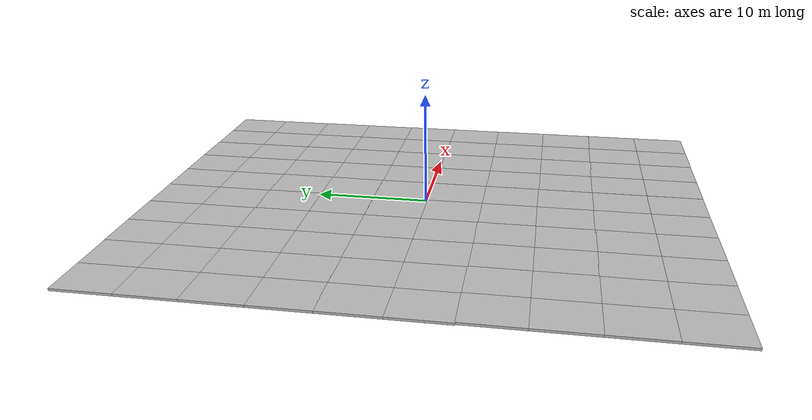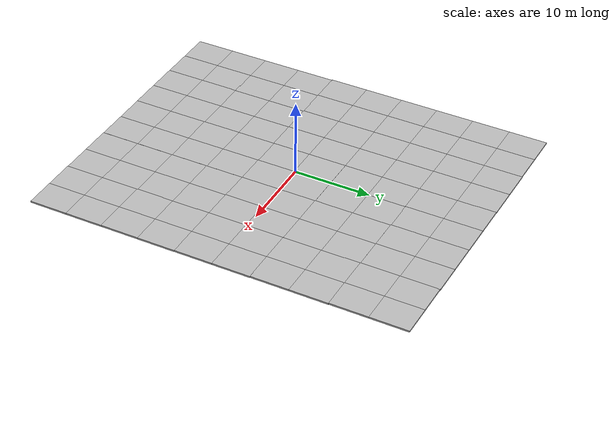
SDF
<sdf version="1.6">
 <world name="default">
  <light name="sun" type="directional">
   <pose>0 0 10 0 -0 0</pose>
   <diffuse>0.8 0.8 0.8 1</diffuse>
   <specular>0.2 0.2 0.2 1</specular>
   <attenuation>
    <range>1000</range>
    <constant>0.9</constant>
    <linear>0.01</linear>
    <quadratic>0.001</quadratic>
   </attenuation>
   <direction>-0.5 0.1 -0.9</direction>
  </light>
  <physics name="default_physics" default="0" type="ode">
   <max_step_size>0.001</max_step_size>
   <real_time_factor>1</real_time_factor>
   <real_time_update_rate>1000</real_time_update_rate>
  </physics>
  <scene><ambient>0.4 0.4 0.4 1</ambient><background>0.7 0.7 0.7 1</background><shadows>1</shadows></scene>
  <gravity>0 0 -9.8</gravity>
  <magnetic_field>6e-06 2.3e-05 -4.2e-05</magnetic_field>
  <atmosphere type="adiabatic"/>
  <spherical_coordinates>
   <surface_model>EARTH_WGS84</surface_model>
   <latitude_deg>0</latitude_deg>
   <longitude_deg>0</longitude_deg>
   <elevation>0</elevation>
   <heading_deg>0</heading_deg>
  </spherical_coordinates>
  <model name="mud_box_many">
   <link name="link">
    <visual name="visual_1">
     <pose>-2 2.5 0 0 -0 0</pose>
     <cast_shadows>0</cast_shadows>
     <geometry><box><size>4 5 0.2</size></box></geometry>
     <material>
      <script>
       <uri>model://mud_box/materials/scripts</uri>
       <uri>model://mud_box/materials/textures</uri>
       <name>vrc/mud</name>
      </script>
      <shader type="pixel"/>
     </material>
    </visual>
    <visual name="visual_2">
     <pose>2 2.5 0 0 -0 0</pose>
     <cast_shadows>0</cast_shadows>
     <geometry><box><size>4 5 0.2</size></box></geometry>
     <material>
      <script>
       <uri>model://mud_box/materials/scripts</uri>
       <uri>model://mud_box/materials/textures</uri>
       <name>vrc/mud</name>
      </script>
      <shader type="pixel"/>
     </material>
    </visual>
    <visual name="visual_3">
     <pose>2 -2.5 0 0 -0 0</pose>
     <cast_shadows>0</cast_shadows>
     <geometry><box><size>4 5 0.2</size></box></geometry>
     <material>
      <script>
       <uri>model://mud_box/materials/scripts</uri>
       <uri>model://mud_box/materials/textures</uri>
       <name>vrc/mud</name>
      </script>
      <shader type="pixel"/>
     </material>
    </visual>
    <visual name="visual_4">
     <pose>-2 -2.5 0 0 -0 0</pose>
     <cast_shadows>0</cast_shadows>
     <geometry><box><size>4 5 0.2</size></box></geometry>
     <material>
      <script>
       <uri>model://mud_box/materials/scripts</uri>
       <uri>model://mud_box/materials/textures</uri>
       <name>vrc/mud</name>
      </script>
      <shader type="pixel"/>
     </material>
    </visual>
    <collision name="collision">
     <geometry><box><size>8 10 0.2</size></box></geometry>
     <surface>
      <friction>
       <ode><mu>1</mu><mu2>1</mu2><fdir1>0 0 0</fdir1><slip1>0</slip1><slip2>0</slip2></ode>
       <torsional>
        <coefficient>1</coefficient>
        <patch_radius>0</patch_radius>
        <surface_radius>0</surface_radius>
        <use_patch_radius>1</use_patch_radius>
        <ode><slip>0</slip></ode>
       </torsional>
      </friction>
      <bounce><restitution_coefficient>0</restitution_coefficient><threshold>1e+06</threshold></bounce>
      <contact>
       <collide_without_contact>0</collide_without_contact>
       <collide_without_contact_bitmask>1</collide_without_contact_bitmask>
       <collide_bitmask>1</collide_bitmask>
       <ode>
        <soft_cfm>0</soft_cfm>
        <soft_erp>0.2</soft_erp>
        <kp>1e+13</kp>
        <kd>1</kd>
        <max_vel>0.01</max_vel>
        <min_depth>0</min_depth>
       </ode>
       <bullet>
        <split_impulse>1</split_impulse>
        <split_impulse_penetration_threshold>-0.01</split_impulse_penetration_threshold>
        <soft_cfm>0</soft_cfm>
        <soft_erp>0.2</soft_erp>
        <kp>1e+13</kp>
        <kd>1</kd>
       </bullet>
      </contact>
     </surface>
    </collision>
   </link>
   <model name="mud_box">
    <static>1</static>
    <link name="link">
     <collision name="collision"><geometry><box><size>8 10 0.2</size></box></geometry></collision>
     <visual name="visual_1">
      <pose>-2 2.5 0 0 -0 0</pose>
      <cast_shadows>0</cast_shadows>
      <geometry><box><size>4 5 0.2</size></box></geometry>
      <material>
       <script>
        <uri>model://mud_box/materials/scripts</uri>
        <uri>model://mud_box/materials/textures</uri>
        <name>vrc/mud</name>
       </script>
      </material>
     </visual>
     <visual name="visual_2">
      <pose>2 2.5 0 0 -0 0</pose>
      <cast_shadows>0</cast_shadows>
      <geometry><box><size>4 5 0.2</size></box></geometry>
      <material>
       <script>
        <uri>model://mud_box/materials/scripts</uri>
        <uri>model://mud_box/materials/textures</uri>
        <name>vrc/mud</name>
       </script>
      </material>
     </visual>
     <visual name="visual_3">
      <pose>2 -2.5 0 0 -0 0</pose>
      <cast_shadows>0</cast_shadows>
      <geometry><box><size>4 5 0.2</size></box></geometry>
      <material>
       <script>
        <uri>model://mud_box/materials/scripts</uri>
        <uri>model://mud_box/materials/textures</uri>
        <name>vrc/mud</name>
       </script>
      </material>
     </visual>
     <visual name="visual_4">
      <pose>-2 -2.5 0 0 -0 0</pose>
      <cast_shadows>0</cast_shadows>
      <geometry><box><size>4 5 0.2</size></box></geometry>
      <material>
       <script>
        <uri>model://mud_box/materials/scripts</uri>
        <uri>model://mud_box/materials/textures</uri>
        <name>vrc/mud</name>
       </script>
      </material>
     </visual>
    </link>
    <pose>-7.99993 0.000204 0 0 -0 0</pose>
   </model>
   <model name="mud_box_clone">
    <static>1</static>
    <link name="link">
     <collision name="collision"><geometry><box><size>8 10 0.2</size></box></geometry></collision>
     <visual name="visual_1">
      <pose>-2 2.5 0 0 -0 0</pose>
      <cast_shadows>0</cast_shadows>
      <geometry><box><size>4 5 0.2</size></box></geometry>
      <material>
       <script>
        <uri>model://mud_box/materials/scripts</uri>
        <uri>model://mud_box/materials/textures</uri>
        <name>vrc/mud</name>
       </script>
      </material>
     </visual>
     <visual name="visual_2">
      <pose>2 2.5 0 0 -0 0</pose>
      <cast_shadows>0</cast_shadows>
      <geometry><box><size>4 5 0.2</size></box></geometry>
      <material>
       <script>
        <uri>model://mud_box/materials/scripts</uri>
        <uri>model://mud_box/materials/textures</uri>
        <name>vrc/mud</name>
       </script>
      </material>
     </visual>
     <visual name="visual_3">
      <pose>2 -2.5 0 0 -0 0</pose>
      <cast_shadows>0</cast_shadows>
      <geometry><box><size>4 5 0.2</size></box></geometry>
      <material>
       <script>
        <uri>model://mud_box/materials/scripts</uri>
        <uri>model://mud_box/materials/textures</uri>
        <name>vrc/mud</name>
       </script>
      </material>
     </visual>
     <visual name="visual_4">
      <pose>-2 -2.5 0 0 -0 0</pose>
      <cast_shadows>0</cast_shadows>
      <geometry><box><size>4 5 0.2</size></box></geometry>
      <material>
       <script>
        <uri>model://mud_box/materials/scripts</uri>
        <uri>model://mud_box/materials/textures</uri>
        <name>vrc/mud</name>
       </script>
      </material>
     </visual>
    </link>
    <pose>-0.00128 10.0099 0 0 -0 0</pose>
   </model>
   <model name="mud_box_clone_0">
    <static>1</static>
    <link name="link">
     <collision name="collision"><geometry><box><size>8 10 0.2</size></box></geometry></collision>
     <visual name="visual_1">
      <pose>-2 2.5 0 0 -0 0</pose>
      <cast_shadows>0</cast_shadows>
      <geometry><box><size>4 5 0.2</size></box></geometry>
      <material>
       <script>
        <uri>model://mud_box/materials/scripts</uri>
        <uri>model://mud_box/materials/textures</uri>
        <name>vrc/mud</name>
       </script>
      </material>
     </visual>
     <visual name="visual_2">
      <pose>2 2.5 0 0 -0 0</pose>
      <cast_shadows>0</cast_shadows>
      <geometry><box><size>4 5 0.2</size></box></geometry>
      <material>
       <script>
        <uri>model://mud_box/materials/scripts</uri>
        <uri>model://mud_box/materials/textures</uri>
        <name>vrc/mud</name>
       </script>
      </material>
     </visual>
     <visual name="visual_3">
      <pose>2 -2.5 0 0 -0 0</pose>
      <cast_shadows>0</cast_shadows>
      <geometry><box><size>4 5 0.2</size></box></geometry>
      <material>
       <script>
        <uri>model://mud_box/materials/scripts</uri>
        <uri>model://mud_box/materials/textures</uri>
        <name>vrc/mud</name>
       </script>
      </material>
     </visual>
     <visual name="visual_4">
      <pose>-2 -2.5 0 0 -0 0</pose>
      <cast_shadows>0</cast_shadows>
      <geometry><box><size>4 5 0.2</size></box></geometry>
      <material>
       <script>
        <uri>model://mud_box/materials/scripts</uri>
        <uri>model://mud_box/materials/textures</uri>
        <name>vrc/mud</name>
       </script>
      </material>
     </visual>
    </link>
    <pose>-8.00093 9.99043 0 0 -0 0</pose>
   </model>
   <model name="mud_box_clone_1">
    <static>1</static>
    <link name="link">
     <collision name="collision"><geometry><box><size>8 10 0.2</size></box></geometry></collision>
     <visual name="visual_1">
      <pose>-2 2.5 0 0 -0 0</pose>
      <cast_shadows>0</cast_shadows>
      <geometry><box><size>4 5 0.2</size></box></geometry>
      <material>
       <script>
        <uri>model://mud_box/materials/scripts</uri>
        <uri>model://mud_box/materials/textures</uri>
        <name>vrc/mud</name>
       </script>
      </material>
     </visual>
     <visual name="visual_2">
      <pose>2 2.5 0 0 -0 0</pose>
      <cast_shadows>0</cast_shadows>
      <geometry><box><size>4 5 0.2</size></box></geometry>
      <material>
       <script>
        <uri>model://mud_box/materials/scripts</uri>
        <uri>model://mud_box/materials/textures</uri>
        <name>vrc/mud</name>
       </script>
      </material>
     </visual>
     <visual name="visual_3">
      <pose>2 -2.5 0 0 -0 0</pose>
      <cast_shadows>0</cast_shadows>
      <geometry><box><size>4 5 0.2</size></box></geometry>
      <material>
       <script>
        <uri>model://mud_box/materials/scripts</uri>
        <uri>model://mud_box/materials/textures</uri>
        <name>vrc/mud</name>
       </script>
      </material>
     </visual>
     <visual name="visual_4">
      <pose>-2 -2.5 0 0 -0 0</pose>
      <cast_shadows>0</cast_shadows>
      <geometry><box><size>4 5 0.2</size></box></geometry>
      <material>
       <script>
        <uri>model://mud_box/materials/scripts</uri>
        <uri>model://mud_box/materials/textures</uri>
        <name>vrc/mud</name>
       </script>
      </material>
     </visual>
    </link>
    <pose>-8.02242 19.9814 0 0 -0 0</pose>
   </model>
   <model name="mud_box_clone_10">
    <static>1</static>
    <link name="link">
     <collision name="collision"><geometry><box><size>8 10 0.2</size></box></geometry></collision>
     <visual name="visual_1">
      <pose>-2 2.5 0 0 -0 0</pose>
      <cast_shadows>0</cast_shadows>
      <geometry><box><size>4 5 0.2</size></box></geometry>
      <material>
       <script>
        <uri>model://mud_box/materials/scripts</uri>
        <uri>model://mud_box/materials/textures</uri>
        <name>vrc/mud</name>
       </script>
      </material>
     </visual>
     <visual name="visual_2">
      <pose>2 2.5 0 0 -0 0</pose>
      <cast_shadows>0</cast_shadows>
      <geometry><box><size>4 5 0.2</size></box></geometry>
      <material>
       <script>
        <uri>model://mud_box/materials/scripts</uri>
        <uri>model://mud_box/materials/textures</uri>
        <name>vrc/mud</name>
       </script>
      </material>
     </visual>
     <visual name="visual_3">
      <pose>2 -2.5 0 0 -0 0</pose>
      <cast_shadows>0</cast_shadows>
      <geometry><box><size>4 5 0.2</size></box></geometry>
      <material>
       <script>
        <uri>model://mud_box/materials/scripts</uri>
        <uri>model://mud_box/materials/textures</uri>
        <name>vrc/mud</name>
       </script>
      </material>
     </visual>
     <visual name="visual_4">
      <pose>-2 -2.5 0 0 -0 0</pose>
      <cast_shadows>0</cast_shadows>
      <geometry><box><size>4 5 0.2</size></box></geometry>
      <material>
       <script>
        <uri>model://mud_box/materials/scripts</uri>
        <uri>model://mud_box/materials/textures</uri>
        <name>vrc/mud</name>
       </script>
      </material>
     </visual>
    </link>
    <pose>8.02535 -10.0007 0 0 -0 0</pose>
   </model>
   <model name="mud_box_clone_11">
    <static>1</static>
    <link name="link">
     <collision name="collision"><geometry><box><size>8 10 0.2</size></box></geometry></collision>
     <visual name="visual_1">
      <pose>-2 2.5 0 0 -0 0</pose>
      <cast_shadows>0</cast_shadows>
      <geometry><box><size>4 5 0.2</size></box></geometry>
      <material>
       <script>
        <uri>model://mud_box/materials/scripts</uri>
        <uri>model://mud_box/materials/textures</uri>
        <name>vrc/mud</name>
       </script>
      </material>
     </visual>
     <visual name="visual_2">
      <pose>2 2.5 0 0 -0 0</pose>
      <cast_shadows>0</cast_shadows>
      <geometry><box><size>4 5 0.2</size></box></geometry>
      <material>
       <script>
        <uri>model://mud_box/materials/scripts</uri>
        <uri>model://mud_box/materials/textures</uri>
        <name>vrc/mud</name>
       </script>
      </material>
     </visual>
     <visual name="visual_3">
      <pose>2 -2.5 0 0 -0 0</pose>
      <cast_shadows>0</cast_shadows>
      <geometry><box><size>4 5 0.2</size></box></geometry>
      <material>
       <script>
        <uri>model://mud_box/materials/scripts</uri>
        <uri>model://mud_box/materials/textures</uri>
        <name>vrc/mud</name>
       </script>
      </material>
     </visual>
     <visual name="visual_4">
      <pose>-2 -2.5 0 0 -0 0</pose>
      <cast_shadows>0</cast_shadows>
      <geometry><box><size>4 5 0.2</size></box></geometry>
      <material>
       <script>
        <uri>model://mud_box/materials/scripts</uri>
        <uri>model://mud_box/materials/textures</uri>
        <name>vrc/mud</name>
       </script>
      </material>
     </visual>
    </link>
    <pose>0.021216 -9.93024 0 0 -0 0</pose>
   </model>
   <model name="mud_box_clone_12">
    <static>1</static>
    <link name="link">
     <collision name="collision"><geometry><box><size>8 10 0.2</size></box></geometry></collision>
     <visual name="visual_1">
      <pose>-2 2.5 0 0 -0 0</pose>
      <cast_shadows>0</cast_shadows>
      <geometry><box><size>4 5 0.2</size></box></geometry>
      <material>
       <script>
        <uri>model://mud_box/materials/scripts</uri>
        <uri>model://mud_box/materials/textures</uri>
        <name>vrc/mud</name>
       </script>
      </material>
     </visual>
     <visual name="visual_2">
      <pose>2 2.5 0 0 -0 0</pose>
      <cast_shadows>0</cast_shadows>
      <geometry><box><size>4 5 0.2</size></box></geometry>
      <material>
       <script>
        <uri>model://mud_box/materials/scripts</uri>
        <uri>model://mud_box/materials/textures</uri>
        <name>vrc/mud</name>
       </script>
      </material>
     </visual>
     <visual name="visual_3">
      <pose>2 -2.5 0 0 -0 0</pose>
      <cast_shadows>0</cast_shadows>
      <geometry><box><size>4 5 0.2</size></box></geometry>
      <material>
       <script>
        <uri>model://mud_box/materials/scripts</uri>
        <uri>model://mud_box/materials/textures</uri>
        <name>vrc/mud</name>
       </script>
      </material>
     </visual>
     <visual name="visual_4">
      <pose>-2 -2.5 0 0 -0 0</pose>
      <cast_shadows>0</cast_shadows>
      <geometry><box><size>4 5 0.2</size></box></geometry>
      <material>
       <script>
        <uri>model://mud_box/materials/scripts</uri>
        <uri>model://mud_box/materials/textures</uri>
        <name>vrc/mud</name>
       </script>
      </material>
     </visual>
    </link>
    <pose>-7.94462 -9.96032 0 0 -0 0</pose>
   </model>
   <model name="mud_box_clone_13">
    <static>1</static>
    <link name="link">
     <collision name="collision"><geometry><box><size>8 10 0.2</size></box></geometry></collision>
     <visual name="visual_1">
      <pose>-2 2.5 0 0 -0 0</pose>
      <cast_shadows>0</cast_shadows>
      <geometry><box><size>4 5 0.2</size></box></geometry>
      <material>
       <script>
        <uri>model://mud_box/materials/scripts</uri>
        <uri>model://mud_box/materials/textures</uri>
        <name>vrc/mud</name>
       </script>
      </material>
     </visual>
     <visual name="visual_2">
      <pose>2 2.5 0 0 -0 0</pose>
      <cast_shadows>0</cast_shadows>
      <geometry><box><size>4 5 0.2</size></box></geometry>
      <material>
       <script>
        <uri>model://mud_box/materials/scripts</uri>
        <uri>model://mud_box/materials/textures</uri>
        <name>vrc/mud</name>
       </script>
      </material>
     </visual>
     <visual name="visual_3">
      <pose>2 -2.5 0 0 -0 0</pose>
      <cast_shadows>0</cast_shadows>
      <geometry><box><size>4 5 0.2</size></box></geometry>
      <material>
       <script>
        <uri>model://mud_box/materials/scripts</uri>
        <uri>model://mud_box/materials/textures</uri>
        <name>vrc/mud</name>
       </script>
      </material>
     </visual>
     <visual name="visual_4">
      <pose>-2 -2.5 0 0 -0 0</pose>
      <cast_shadows>0</cast_shadows>
      <geometry><box><size>4 5 0.2</size></box></geometry>
      <material>
       <script>
        <uri>model://mud_box/materials/scripts</uri>
        <uri>model://mud_box/materials/textures</uri>
        <name>vrc/mud</name>
       </script>
      </material>
     </visual>
    </link>
    <pose>-15.8881 -9.94652 0 0 -0 0</pose>
   </model>
   <model name="mud_box_clone_14">
    <static>1</static>
    <link name="link">
     <collision name="collision"><geometry><box><size>8 10 0.2</size></box></geometry></collision>
     <visual name="visual_1">
      <pose>-2 2.5 0 0 -0 0</pose>
      <cast_shadows>0</cast_shadows>
      <geometry><box><size>4 5 0.2</size></box></geometry>
      <material>
       <script>
        <uri>model://mud_box/materials/scripts</uri>
        <uri>model://mud_box/materials/textures</uri>
        <name>vrc/mud</name>
       </script>
      </material>
     </visual>
     <visual name="visual_2">
      <pose>2 2.5 0 0 -0 0</pose>
      <cast_shadows>0</cast_shadows>
      <geometry><box><size>4 5 0.2</size></box></geometry>
      <material>
       <script>
        <uri>model://mud_box/materials/scripts</uri>
        <uri>model://mud_box/materials/textures</uri>
        <name>vrc/mud</name>
       </script>
      </material>
     </visual>
     <visual name="visual_3">
      <pose>2 -2.5 0 0 -0 0</pose>
      <cast_shadows>0</cast_shadows>
      <geometry><box><size>4 5 0.2</size></box></geometry>
      <material>
       <script>
        <uri>model://mud_box/materials/scripts</uri>
        <uri>model://mud_box/materials/textures</uri>
        <name>vrc/mud</name>
       </script>
      </material>
     </visual>
     <visual name="visual_4">
      <pose>-2 -2.5 0 0 -0 0</pose>
      <cast_shadows>0</cast_shadows>
      <geometry><box><size>4 5 0.2</size></box></geometry>
      <material>
       <script>
        <uri>model://mud_box/materials/scripts</uri>
        <uri>model://mud_box/materials/textures</uri>
        <name>vrc/mud</name>
       </script>
      </material>
     </visual>
    </link>
    <pose>-15.9925 -0.005277 0 0 -0 0</pose>
   </model>
   <model name="mud_box_clone_15">
    <static>1</static>
    <link name="link">
     <collision name="collision"><geometry><box><size>8 10 0.2</size></box></geometry></collision>
     <visual name="visual_1">
      <pose>-2 2.5 0 0 -0 0</pose>
      <cast_shadows>0</cast_shadows>
      <geometry><box><size>4 5 0.2</size></box></geometry>
      <material>
       <script>
        <uri>model://mud_box/materials/scripts</uri>
        <uri>model://mud_box/materials/textures</uri>
        <name>vrc/mud</name>
       </script>
      </material>
     </visual>
     <visual name="visual_2">
      <pose>2 2.5 0 0 -0 0</pose>
      <cast_shadows>0</cast_shadows>
      <geometry><box><size>4 5 0.2</size></box></geometry>
      <material>
       <script>
        <uri>model://mud_box/materials/scripts</uri>
        <uri>model://mud_box/materials/textures</uri>
        <name>vrc/mud</name>
       </script>
      </material>
     </visual>
     <visual name="visual_3">
      <pose>2 -2.5 0 0 -0 0</pose>
      <cast_shadows>0</cast_shadows>
      <geometry><box><size>4 5 0.2</size></box></geometry>
      <material>
       <script>
        <uri>model://mud_box/materials/scripts</uri>
        <uri>model://mud_box/materials/textures</uri>
        <name>vrc/mud</name>
       </script>
      </material>
     </visual>
     <visual name="visual_4">
      <pose>-2 -2.5 0 0 -0 0</pose>
      <cast_shadows>0</cast_shadows>
      <geometry><box><size>4 5 0.2</size></box></geometry>
      <material>
       <script>
        <uri>model://mud_box/materials/scripts</uri>
        <uri>model://mud_box/materials/textures</uri>
        <name>vrc/mud</name>
       </script>
      </material>
     </visual>
    </link>
    <pose>-15.9998 9.95539 0 0 -0 0</pose>
   </model>
   <model name="mud_box_clone_16">
    <static>1</static>
    <link name="link">
     <collision name="collision"><geometry><box><size>8 10 0.2</size></box></geometry></collision>
     <visual name="visual_1">
      <pose>-2 2.5 0 0 -0 0</pose>
      <cast_shadows>0</cast_shadows>
      <geometry><box><size>4 5 0.2</size></box></geometry>
      <material>
       <script>
        <uri>model://mud_box/materials/scripts</uri>
        <uri>model://mud_box/materials/textures</uri>
        <name>vrc/mud</name>
       </script>
      </material>
     </visual>
     <visual name="visual_2">
      <pose>2 2.5 0 0 -0 0</pose>
      <cast_shadows>0</cast_shadows>
      <geometry><box><size>4 5 0.2</size></box></geometry>
      <material>
       <script>
        <uri>model://mud_box/materials/scripts</uri>
        <uri>model://mud_box/materials/textures</uri>
        <name>vrc/mud</name>
       </script>
      </material>
     </visual>
     <visual name="visual_3">
      <pose>2 -2.5 0 0 -0 0</pose>
      <cast_shadows>0</cast_shadows>
      <geometry><box><size>4 5 0.2</size></box></geometry>
      <material>
       <script>
        <uri>model://mud_box/materials/scripts</uri>
        <uri>model://mud_box/materials/textures</uri>
        <name>vrc/mud</name>
       </script>
      </material>
     </visual>
     <visual name="visual_4">
      <pose>-2 -2.5 0 0 -0 0</pose>
      <cast_shadows>0</cast_shadows>
      <geometry><box><size>4 5 0.2</size></box></geometry>
      <material>
       <script>
        <uri>model://mud_box/materials/scripts</uri>
        <uri>model://mud_box/materials/textures</uri>
        <name>vrc/mud</name>
       </script>
      </material>
     </visual>
    </link>
    <pose>-16.0048 19.9492 0 0 -0 0</pose>
   </model>
   <model name="mud_box_clone_17">
    <static>1</static>
    <link name="link">
     <collision name="collision"><geometry><box><size>8 10 0.2</size></box></geometry></collision>
     <visual name="visual_1">
      <pose>-2 2.5 0 0 -0 0</pose>
      <cast_shadows>0</cast_shadows>
      <geometry><box><size>4 5 0.2</size></box></geometry>
      <material>
       <script>
        <uri>model://mud_box/materials/scripts</uri>
        <uri>model://mud_box/materials/textures</uri>
        <name>vrc/mud</name>
       </script>
      </material>
     </visual>
     <visual name="visual_2">
      <pose>2 2.5 0 0 -0 0</pose>
      <cast_shadows>0</cast_shadows>
      <geometry><box><size>4 5 0.2</size></box></geometry>
      <material>
       <script>
        <uri>model://mud_box/materials/scripts</uri>
        <uri>model://mud_box/materials/textures</uri>
        <name>vrc/mud</name>
       </script>
      </material>
     </visual>
     <visual name="visual_3">
      <pose>2 -2.5 0 0 -0 0</pose>
      <cast_shadows>0</cast_shadows>
      <geometry><box><size>4 5 0.2</size></box></geometry>
      <material>
       <script>
        <uri>model://mud_box/materials/scripts</uri>
        <uri>model://mud_box/materials/textures</uri>
        <name>vrc/mud</name>
       </script>
      </material>
     </visual>
     <visual name="visual_4">
      <pose>-2 -2.5 0 0 -0 0</pose>
      <cast_shadows>0</cast_shadows>
      <geometry><box><size>4 5 0.2</size></box></geometry>
      <material>
       <script>
        <uri>model://mud_box/materials/scripts</uri>
        <uri>model://mud_box/materials/textures</uri>
        <name>vrc/mud</name>
       </script>
      </material>
     </visual>
    </link>
    <pose>15.9995 -19.9495 0 0 -0 0</pose>
   </model>
   <model name="mud_box_clone_18">
    <static>1</static>
    <link name="link">
     <collision name="collision"><geometry><box><size>8 10 0.2</size></box></geometry></collision>
     <visual name="visual_1">
      <pose>-2 2.5 0 0 -0 0</pose>
      <cast_shadows>0</cast_shadows>
      <geometry><box><size>4 5 0.2</size></box></geometry>
      <material>
       <script>
        <uri>model://mud_box/materials/scripts</uri>
        <uri>model://mud_box/materials/textures</uri>
        <name>vrc/mud</name>
       </script>
      </material>
     </visual>
     <visual name="visual_2">
      <pose>2 2.5 0 0 -0 0</pose>
      <cast_shadows>0</cast_shadows>
      <geometry><box><size>4 5 0.2</size></box></geometry>
      <material>
       <script>
        <uri>model://mud_box/materials/scripts</uri>
        <uri>model://mud_box/materials/textures</uri>
        <name>vrc/mud</name>
       </script>
      </material>
     </visual>
     <visual name="visual_3">
      <pose>2 -2.5 0 0 -0 0</pose>
      <cast_shadows>0</cast_shadows>
      <geometry><box><size>4 5 0.2</size></box></geometry>
      <material>
       <script>
        <uri>model://mud_box/materials/scripts</uri>
        <uri>model://mud_box/materials/textures</uri>
        <name>vrc/mud</name>
       </script>
      </material>
     </visual>
     <visual name="visual_4">
      <pose>-2 -2.5 0 0 -0 0</pose>
      <cast_shadows>0</cast_shadows>
      <geometry><box><size>4 5 0.2</size></box></geometry>
      <material>
       <script>
        <uri>model://mud_box/materials/scripts</uri>
        <uri>model://mud_box/materials/textures</uri>
        <name>vrc/mud</name>
       </script>
      </material>
     </visual>
    </link>
    <pose>8.04025 -19.9121 0 0 -0 0</pose>
   </model>
   <model name="mud_box_clone_19">
    <static>1</static>
    <link name="link">
     <collision name="collision"><geometry><box><size>8 10 0.2</size></box></geometry></collision>
     <visual name="visual_1">
      <pose>-2 2.5 0 0 -0 0</pose>
      <cast_shadows>0</cast_shadows>
      <geometry><box><size>4 5 0.2</size></box></geometry>
      <material>
       <script>
        <uri>model://mud_box/materials/scripts</uri>
        <uri>model://mud_box/materials/textures</uri>
        <name>vrc/mud</name>
       </script>
      </material>
     </visual>
     <visual name="visual_2">
      <pose>2 2.5 0 0 -0 0</pose>
      <cast_shadows>0</cast_shadows>
      <geometry><box><size>4 5 0.2</size></box></geometry>
      <material>
       <script>
        <uri>model://mud_box/materials/scripts</uri>
        <uri>model://mud_box/materials/textures</uri>
        <name>vrc/mud</name>
       </script>
      </material>
     </visual>
     <visual name="visual_3">
      <pose>2 -2.5 0 0 -0 0</pose>
      <cast_shadows>0</cast_shadows>
      <geometry><box><size>4 5 0.2</size></box></geometry>
      <material>
       <script>
        <uri>model://mud_box/materials/scripts</uri>
        <uri>model://mud_box/materials/textures</uri>
        <name>vrc/mud</name>
       </script>
      </material>
     </visual>
     <visual name="visual_4">
      <pose>-2 -2.5 0 0 -0 0</pose>
      <cast_shadows>0</cast_shadows>
      <geometry><box><size>4 5 0.2</size></box></geometry>
      <material>
       <script>
        <uri>model://mud_box/materials/scripts</uri>
        <uri>model://mud_box/materials/textures</uri>
        <name>vrc/mud</name>
       </script>
      </material>
     </visual>
    </link>
    <pose>0.032398 -19.8816 0 0 -0 0</pose>
   </model>
   <model name="mud_box_clone_2">
    <static>1</static>
    <link name="link">
     <collision name="collision"><geometry><box><size>8 10 0.2</size></box></geometry></collision>
     <visual name="visual_1">
      <pose>-2 2.5 0 0 -0 0</pose>
      <cast_shadows>0</cast_shadows>
      <geometry><box><size>4 5 0.2</size></box></geometry>
      <material>
       <script>
        <uri>model://mud_box/materials/scripts</uri>
        <uri>model://mud_box/materials/textures</uri>
        <name>vrc/mud</name>
       </script>
      </material>
     </visual>
     <visual name="visual_2">
      <pose>2 2.5 0 0 -0 0</pose>
      <cast_shadows>0</cast_shadows>
      <geometry><box><size>4 5 0.2</size></box></geometry>
      <material>
       <script>
        <uri>model://mud_box/materials/scripts</uri>
        <uri>model://mud_box/materials/textures</uri>
        <name>vrc/mud</name>
       </script>
      </material>
     </visual>
     <visual name="visual_3">
      <pose>2 -2.5 0 0 -0 0</pose>
      <cast_shadows>0</cast_shadows>
      <geometry><box><size>4 5 0.2</size></box></geometry>
      <material>
       <script>
        <uri>model://mud_box/materials/scripts</uri>
        <uri>model://mud_box/materials/textures</uri>
        <name>vrc/mud</name>
       </script>
      </material>
     </visual>
     <visual name="visual_4">
      <pose>-2 -2.5 0 0 -0 0</pose>
      <cast_shadows>0</cast_shadows>
      <geometry><box><size>4 5 0.2</size></box></geometry>
      <material>
       <script>
        <uri>model://mud_box/materials/scripts</uri>
        <uri>model://mud_box/materials/textures</uri>
        <name>vrc/mud</name>
       </script>
      </material>
     </visual>
    </link>
    <pose>-0.068966 19.9509 0 0 -0 0</pose>
   </model>
   <model name="mud_box_clone_20">
    <static>1</static>
    <link name="link">
     <collision name="collision"><geometry><box><size>8 10 0.2</size></box></geometry></collision>
     <visual name="visual_1">
      <pose>-2 2.5 0 0 -0 0</pose>
      <cast_shadows>0</cast_shadows>
      <geometry><box><size>4 5 0.2</size></box></geometry>
      <material>
       <script>
        <uri>model://mud_box/materials/scripts</uri>
        <uri>model://mud_box/materials/textures</uri>
        <name>vrc/mud</name>
       </script>
      </material>
     </visual>
     <visual name="visual_2">
      <pose>2 2.5 0 0 -0 0</pose>
      <cast_shadows>0</cast_shadows>
      <geometry><box><size>4 5 0.2</size></box></geometry>
      <material>
       <script>
        <uri>model://mud_box/materials/scripts</uri>
        <uri>model://mud_box/materials/textures</uri>
        <name>vrc/mud</name>
       </script>
      </material>
     </visual>
     <visual name="visual_3">
      <pose>2 -2.5 0 0 -0 0</pose>
      <cast_shadows>0</cast_shadows>
      <geometry><box><size>4 5 0.2</size></box></geometry>
      <material>
       <script>
        <uri>model://mud_box/materials/scripts</uri>
        <uri>model://mud_box/materials/textures</uri>
        <name>vrc/mud</name>
       </script>
      </material>
     </visual>
     <visual name="visual_4">
      <pose>-2 -2.5 0 0 -0 0</pose>
      <cast_shadows>0</cast_shadows>
      <geometry><box><size>4 5 0.2</size></box></geometry>
      <material>
       <script>
        <uri>model://mud_box/materials/scripts</uri>
        <uri>model://mud_box/materials/textures</uri>
        <name>vrc/mud</name>
       </script>
      </material>
     </visual>
    </link>
    <pose>-7.95336 -19.8998 0 0 -0 0</pose>
   </model>
   <model name="mud_box_clone_21">
    <static>1</static>
    <link name="link">
     <collision name="collision"><geometry><box><size>8 10 0.2</size></box></geometry></collision>
     <visual name="visual_1">
      <pose>-2 2.5 0 0 -0 0</pose>
      <cast_shadows>0</cast_shadows>
      <geometry><box><size>4 5 0.2</size></box></geometry>
      <material>
       <script>
        <uri>model://mud_box/materials/scripts</uri>
        <uri>model://mud_box/materials/textures</uri>
        <name>vrc/mud</name>
       </script>
      </material>
     </visual>
     <visual name="visual_2">
      <pose>2 2.5 0 0 -0 0</pose>
      <cast_shadows>0</cast_shadows>
      <geometry><box><size>4 5 0.2</size></box></geometry>
      <material>
       <script>
        <uri>model://mud_box/materials/scripts</uri>
        <uri>model://mud_box/materials/textures</uri>
        <name>vrc/mud</name>
       </script>
      </material>
     </visual>
     <visual name="visual_3">
      <pose>2 -2.5 0 0 -0 0</pose>
      <cast_shadows>0</cast_shadows>
      <geometry><box><size>4 5 0.2</size></box></geometry>
      <material>
       <script>
        <uri>model://mud_box/materials/scripts</uri>
        <uri>model://mud_box/materials/textures</uri>
        <name>vrc/mud</name>
       </script>
      </material>
     </visual>
     <visual name="visual_4">
      <pose>-2 -2.5 0 0 -0 0</pose>
      <cast_shadows>0</cast_shadows>
      <geometry><box><size>4 5 0.2</size></box></geometry>
      <material>
       <script>
        <uri>model://mud_box/materials/scripts</uri>
        <uri>model://mud_box/materials/textures</uri>
        <name>vrc/mud</name>
       </script>
      </material>
     </visual>
    </link>
    <pose>-15.8877 -19.8818 0 0 -0 0</pose>
   </model>
   <model name="mud_box_clone_3">
    <static>1</static>
    <link name="link">
     <collision name="collision"><geometry><box><size>8 10 0.2</size></box></geometry></collision>
     <visual name="visual_1">
      <pose>-2 2.5 0 0 -0 0</pose>
      <cast_shadows>0</cast_shadows>
      <geometry><box><size>4 5 0.2</size></box></geometry>
      <material>
       <script>
        <uri>model://mud_box/materials/scripts</uri>
        <uri>model://mud_box/materials/textures</uri>
        <name>vrc/mud</name>
       </script>
      </material>
     </visual>
     <visual name="visual_2">
      <pose>2 2.5 0 0 -0 0</pose>
      <cast_shadows>0</cast_shadows>
      <geometry><box><size>4 5 0.2</size></box></geometry>
      <material>
       <script>
        <uri>model://mud_box/materials/scripts</uri>
        <uri>model://mud_box/materials/textures</uri>
        <name>vrc/mud</name>
       </script>
      </material>
     </visual>
     <visual name="visual_3">
      <pose>2 -2.5 0 0 -0 0</pose>
      <cast_shadows>0</cast_shadows>
      <geometry><box><size>4 5 0.2</size></box></geometry>
      <material>
       <script>
        <uri>model://mud_box/materials/scripts</uri>
        <uri>model://mud_box/materials/textures</uri>
        <name>vrc/mud</name>
       </script>
      </material>
     </visual>
     <visual name="visual_4">
      <pose>-2 -2.5 0 0 -0 0</pose>
      <cast_shadows>0</cast_shadows>
      <geometry><box><size>4 5 0.2</size></box></geometry>
      <material>
       <script>
        <uri>model://mud_box/materials/scripts</uri>
        <uri>model://mud_box/materials/textures</uri>
        <name>vrc/mud</name>
       </script>
      </material>
     </visual>
    </link>
    <pose>7.9098 19.9417 0 0 -0 0</pose>
   </model>
   <model name="mud_box_clone_4">
    <static>1</static>
    <link name="link">
     <collision name="collision"><geometry><box><size>8 10 0.2</size></box></geometry></collision>
     <visual name="visual_1">
      <pose>-2 2.5 0 0 -0 0</pose>
      <cast_shadows>0</cast_shadows>
      <geometry><box><size>4 5 0.2</size></box></geometry>
      <material>
       <script>
        <uri>model://mud_box/materials/scripts</uri>
        <uri>model://mud_box/materials/textures</uri>
        <name>vrc/mud</name>
       </script>
      </material>
     </visual>
     <visual name="visual_2">
      <pose>2 2.5 0 0 -0 0</pose>
      <cast_shadows>0</cast_shadows>
      <geometry><box><size>4 5 0.2</size></box></geometry>
      <material>
       <script>
        <uri>model://mud_box/materials/scripts</uri>
        <uri>model://mud_box/materials/textures</uri>
        <name>vrc/mud</name>
       </script>
      </material>
     </visual>
     <visual name="visual_3">
      <pose>2 -2.5 0 0 -0 0</pose>
      <cast_shadows>0</cast_shadows>
      <geometry><box><size>4 5 0.2</size></box></geometry>
      <material>
       <script>
        <uri>model://mud_box/materials/scripts</uri>
        <uri>model://mud_box/materials/textures</uri>
        <name>vrc/mud</name>
       </script>
      </material>
     </visual>
     <visual name="visual_4">
      <pose>-2 -2.5 0 0 -0 0</pose>
      <cast_shadows>0</cast_shadows>
      <geometry><box><size>4 5 0.2</size></box></geometry>
      <material>
       <script>
        <uri>model://mud_box/materials/scripts</uri>
        <uri>model://mud_box/materials/textures</uri>
        <name>vrc/mud</name>
       </script>
      </material>
     </visual>
    </link>
    <pose>7.95168 9.94009 0 0 -0 0</pose>
   </model>
   <model name="mud_box_clone_5">
    <static>1</static>
    <link name="link">
     <collision name="collision"><geometry><box><size>8 10 0.2</size></box></geometry></collision>
     <visual name="visual_1">
      <pose>-2 2.5 0 0 -0 0</pose>
      <cast_shadows>0</cast_shadows>
      <geometry><box><size>4 5 0.2</size></box></geometry>
      <material>
       <script>
        <uri>model://mud_box/materials/scripts</uri>
        <uri>model://mud_box/materials/textures</uri>
        <name>vrc/mud</name>
       </script>
      </material>
     </visual>
     <visual name="visual_2">
      <pose>2 2.5 0 0 -0 0</pose>
      <cast_shadows>0</cast_shadows>
      <geometry><box><size>4 5 0.2</size></box></geometry>
      <material>
       <script>
        <uri>model://mud_box/materials/scripts</uri>
        <uri>model://mud_box/materials/textures</uri>
        <name>vrc/mud</name>
       </script>
      </material>
     </visual>
     <visual name="visual_3">
      <pose>2 -2.5 0 0 -0 0</pose>
      <cast_shadows>0</cast_shadows>
      <geometry><box><size>4 5 0.2</size></box></geometry>
      <material>
       <script>
        <uri>model://mud_box/materials/scripts</uri>
        <uri>model://mud_box/materials/textures</uri>
        <name>vrc/mud</name>
       </script>
      </material>
     </visual>
     <visual name="visual_4">
      <pose>-2 -2.5 0 0 -0 0</pose>
      <cast_shadows>0</cast_shadows>
      <geometry><box><size>4 5 0.2</size></box></geometry>
      <material>
       <script>
        <uri>model://mud_box/materials/scripts</uri>
        <uri>model://mud_box/materials/textures</uri>
        <name>vrc/mud</name>
       </script>
      </material>
     </visual>
    </link>
    <pose>15.8592 19.8896 0 0 -0 0</pose>
   </model>
   <model name="mud_box_clone_6">
    <static>1</static>
    <link name="link">
     <collision name="collision"><geometry><box><size>8 10 0.2</size></box></geometry></collision>
     <visual name="visual_1">
      <pose>-2 2.5 0 0 -0 0</pose>
      <cast_shadows>0</cast_shadows>
      <geometry><box><size>4 5 0.2</size></box></geometry>
      <material>
       <script>
        <uri>model://mud_box/materials/scripts</uri>
        <uri>model://mud_box/materials/textures</uri>
        <name>vrc/mud</name>
       </script>
      </material>
     </visual>
     <visual name="visual_2">
      <pose>2 2.5 0 0 -0 0</pose>
      <cast_shadows>0</cast_shadows>
      <geometry><box><size>4 5 0.2</size></box></geometry>
      <material>
       <script>
        <uri>model://mud_box/materials/scripts</uri>
        <uri>model://mud_box/materials/textures</uri>
        <name>vrc/mud</name>
       </script>
      </material>
     </visual>
     <visual name="visual_3">
      <pose>2 -2.5 0 0 -0 0</pose>
      <cast_shadows>0</cast_shadows>
      <geometry><box><size>4 5 0.2</size></box></geometry>
      <material>
       <script>
        <uri>model://mud_box/materials/scripts</uri>
        <uri>model://mud_box/materials/textures</uri>
        <name>vrc/mud</name>
       </script>
      </material>
     </visual>
     <visual name="visual_4">
      <pose>-2 -2.5 0 0 -0 0</pose>
      <cast_shadows>0</cast_shadows>
      <geometry><box><size>4 5 0.2</size></box></geometry>
      <material>
       <script>
        <uri>model://mud_box/materials/scripts</uri>
        <uri>model://mud_box/materials/textures</uri>
        <name>vrc/mud</name>
       </script>
      </material>
     </visual>
    </link>
    <pose>15.9087 9.90479 0 0 -0 0</pose>
   </model>
   <model name="mud_box_clone_7">
    <static>1</static>
    <link name="link">
     <collision name="collision"><geometry><box><size>8 10 0.2</size></box></geometry></collision>
     <visual name="visual_1">
      <pose>-2 2.5 0 0 -0 0</pose>
      <cast_shadows>0</cast_shadows>
      <geometry><box><size>4 5 0.2</size></box></geometry>
      <material>
       <script>
        <uri>model://mud_box/materials/scripts</uri>
        <uri>model://mud_box/materials/textures</uri>
        <name>vrc/mud</name>
       </script>
      </material>
     </visual>
     <visual name="visual_2">
      <pose>2 2.5 0 0 -0 0</pose>
      <cast_shadows>0</cast_shadows>
      <geometry><box><size>4 5 0.2</size></box></geometry>
      <material>
       <script>
        <uri>model://mud_box/materials/scripts</uri>
        <uri>model://mud_box/materials/textures</uri>
        <name>vrc/mud</name>
       </script>
      </material>
     </visual>
     <visual name="visual_3">
      <pose>2 -2.5 0 0 -0 0</pose>
      <cast_shadows>0</cast_shadows>
      <geometry><box><size>4 5 0.2</size></box></geometry>
      <material>
       <script>
        <uri>model://mud_box/materials/scripts</uri>
        <uri>model://mud_box/materials/textures</uri>
        <name>vrc/mud</name>
       </script>
      </material>
     </visual>
     <visual name="visual_4">
      <pose>-2 -2.5 0 0 -0 0</pose>
      <cast_shadows>0</cast_shadows>
      <geometry><box><size>4 5 0.2</size></box></geometry>
      <material>
       <script>
        <uri>model://mud_box/materials/scripts</uri>
        <uri>model://mud_box/materials/textures</uri>
        <name>vrc/mud</name>
       </script>
      </material>
     </visual>
    </link>
    <pose>7.95747 -0.047821 0 0 -0 0</pose>
   </model>
   <model name="mud_box_clone_8">
    <static>1</static>
    <link name="link">
     <collision name="collision"><geometry><box><size>8 10 0.2</size></box></geometry></collision>
     <visual name="visual_1">
      <pose>-2 2.5 0 0 -0 0</pose>
      <cast_shadows>0</cast_shadows>
      <geometry><box><size>4 5 0.2</size></box></geometry>
      <material>
       <script>
        <uri>model://mud_box/materials/scripts</uri>
        <uri>model://mud_box/materials/textures</uri>
        <name>vrc/mud</name>
       </script>
      </material>
     </visual>
     <visual name="visual_2">
      <pose>2 2.5 0 0 -0 0</pose>
      <cast_shadows>0</cast_shadows>
      <geometry><box><size>4 5 0.2</size></box></geometry>
      <material>
       <script>
        <uri>model://mud_box/materials/scripts</uri>
        <uri>model://mud_box/materials/textures</uri>
        <name>vrc/mud</name>
       </script>
      </material>
     </visual>
     <visual name="visual_3">
      <pose>2 -2.5 0 0 -0 0</pose>
      <cast_shadows>0</cast_shadows>
      <geometry><box><size>4 5 0.2</size></box></geometry>
      <material>
       <script>
        <uri>model://mud_box/materials/scripts</uri>
        <uri>model://mud_box/materials/textures</uri>
        <name>vrc/mud</name>
       </script>
      </material>
     </visual>
     <visual name="visual_4">
      <pose>-2 -2.5 0 0 -0 0</pose>
      <cast_shadows>0</cast_shadows>
      <geometry><box><size>4 5 0.2</size></box></geometry>
      <material>
       <script>
        <uri>model://mud_box/materials/scripts</uri>
        <uri>model://mud_box/materials/textures</uri>
        <name>vrc/mud</name>
       </script>
      </material>
     </visual>
    </link>
    <pose>15.9538 -0.049322 0 0 -0 0</pose>
   </model>
   <model name="mud_box_clone_9">
    <static>1</static>
    <link name="link">
     <collision name="collision"><geometry><box><size>8 10 0.2</size></box></geometry></collision>
     <visual name="visual_1">
      <pose>-2 2.5 0 0 -0 0</pose>
      <cast_shadows>0</cast_shadows>
      <geometry><box><size>4 5 0.2</size></box></geometry>
      <material>
       <script>
        <uri>model://mud_box/materials/scripts</uri>
        <uri>model://mud_box/materials/textures</uri>
        <name>vrc/mud</name>
       </script>
      </material>
     </visual>
     <visual name="visual_2">
      <pose>2 2.5 0 0 -0 0</pose>
      <cast_shadows>0</cast_shadows>
      <geometry><box><size>4 5 0.2</size></box></geometry>
      <material>
       <script>
        <uri>model://mud_box/materials/scripts</uri>
        <uri>model://mud_box/materials/textures</uri>
        <name>vrc/mud</name>
       </script>
      </material>
     </visual>
     <visual name="visual_3">
      <pose>2 -2.5 0 0 -0 0</pose>
      <cast_shadows>0</cast_shadows>
      <geometry><box><size>4 5 0.2</size></box></geometry>
      <material>
       <script>
        <uri>model://mud_box/materials/scripts</uri>
        <uri>model://mud_box/materials/textures</uri>
        <name>vrc/mud</name>
       </script>
      </material>
     </visual>
     <visual name="visual_4">
      <pose>-2 -2.5 0 0 -0 0</pose>
      <cast_shadows>0</cast_shadows>
      <geometry><box><size>4 5 0.2</size></box></geometry>
      <material>
       <script>
        <uri>model://mud_box/materials/scripts</uri>
        <uri>model://mud_box/materials/textures</uri>
        <name>vrc/mud</name>
       </script>
      </material>
     </visual>
    </link>
    <pose>15.9787 -10.0225 0 0 -0 0</pose>
   </model>
   <static>1</static>
   <pose>0.075363 -0.170248 0 0 -0 0</pose>
  </model>
 </world>
</sdf>
